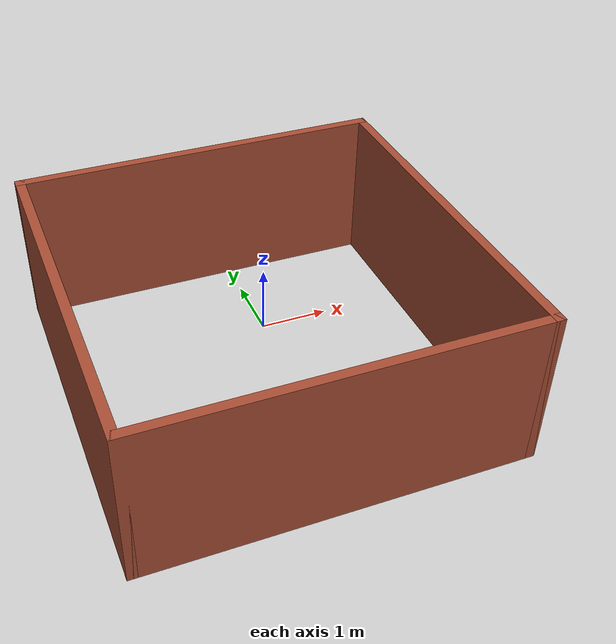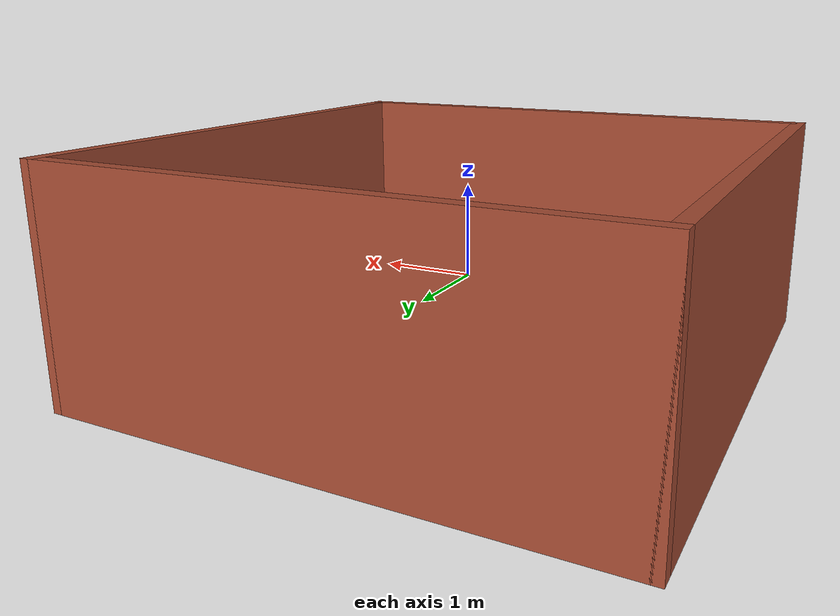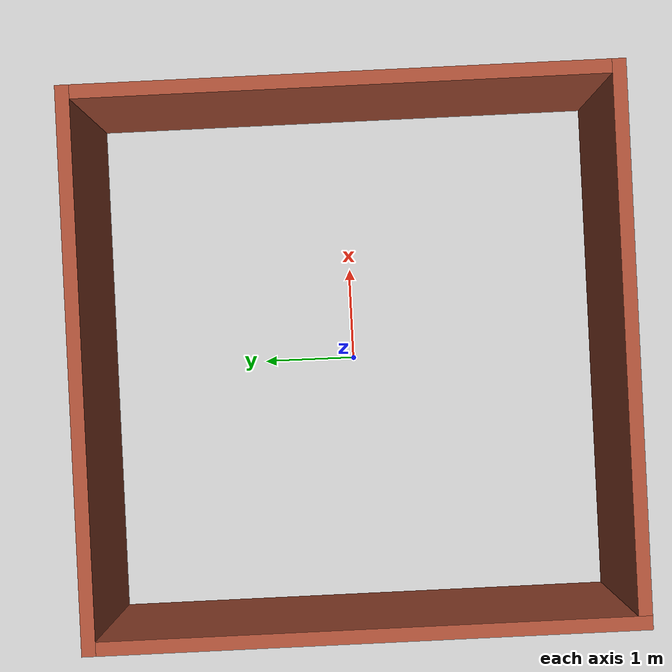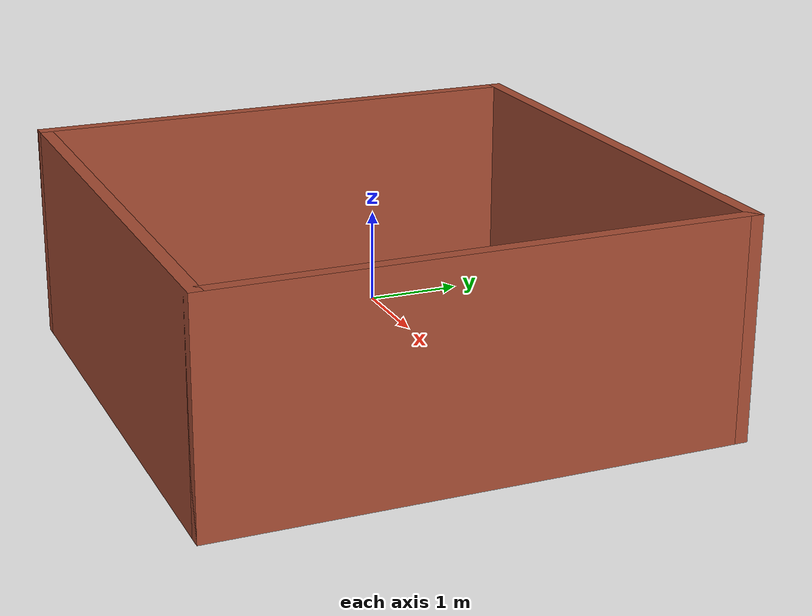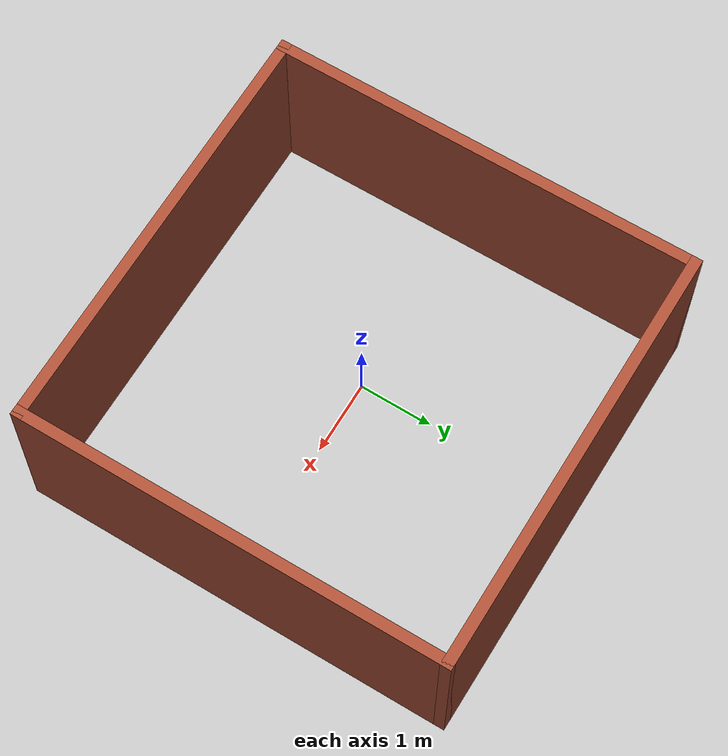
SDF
<?xml version='1.0'?>
<sdf version='1.6'>
  <model name='turtlebot3_square'>
    <pose frame=''>0 0 0 0 -0 0</pose>
    <link name='Wall_0'>
      <collision name='Wall_0_Collision'>
        <geometry>
          <box>
            <size>6 0.15 2.5</size>
          </box>
        </geometry>
        <pose frame=''>0 0 0.25 0 -0 0</pose>
      </collision>
      <visual name='Wall_0_Visual'>
        <pose frame=''>0 0 0.25 0 -0 0</pose>
        <geometry>
          <box>
            <size>6 0.15 2.5</size>
          </box>
        </geometry>
        <material>
          <script>
            <uri>file://media/materials/scripts/gazebo.material</uri>
            <name>Gazebo/Bricks</name>
          </script>
          <ambient>1 1 1 1</ambient>
        </material>
      </visual>
      <pose frame=''>0 2.925 0 0 -0 0</pose>
    </link>
    <link name='Wall_2'>
      <collision name='Wall_2_Collision'>
        <geometry>
          <box>
            <size>6 0.15 2.5</size>
          </box>
        </geometry>
        <pose frame=''>0 0 0.25 0 -0 0</pose>
      </collision>
      <visual name='Wall_2_Visual'>
        <pose frame=''>0 0 0.25 0 -0 0</pose>
        <geometry>
          <box>
            <size>6 0.15 2.5</size>
          </box>
        </geometry>
        <material>
          <script>
            <uri>file://media/materials/scripts/gazebo.material</uri>
            <name>Gazebo/Bricks</name>
          </script>
          <ambient>1 1 1 1</ambient>
        </material>
      </visual>
      <pose frame=''>-2.925 0 0 0 0 -1.5708</pose>
    </link>
    <link name='Wall_3'>
      <collision name='Wall_3_Collision'>
        <geometry>
          <box>
            <size>6 0.15 2.5</size>
          </box>
        </geometry>
        <pose frame=''>0 0 0.25 0 -0 0</pose>
      </collision>
      <visual name='Wall_3_Visual'>
        <pose frame=''>0 0 0.25 0 -0 0</pose>
        <geometry>
          <box>
            <size>6 0.15 2.5</size>
          </box>
        </geometry>
        <material>
          <script>
            <uri>file://media/materials/scripts/gazebo.material</uri>
            <name>Gazebo/Bricks</name>
          </script>
          <ambient>1 1 1 1</ambient>
        </material>
      </visual>
      <pose frame=''>0 -2.925 0 0 -0 0</pose>
    </link>
    <link name='Wall_4'>
      <collision name='Wall_4_Collision'>
        <geometry>
          <box>
            <size>6 0.15 2.5</size>
          </box>
        </geometry>
        <pose frame=''>0 0 0.25 0 -0 0</pose>
      </collision>
      <visual name='Wall_4_Visual'>
        <pose frame=''>0 0 0.25 0 -0 0</pose>
        <geometry>
          <box>
            <size>6 0.15 2.5</size>
          </box>
        </geometry>
        <material>
          <script>
            <uri>file://media/materials/scripts/gazebo.material</uri>
            <name>Gazebo/Bricks</name>
          </script>
          <ambient>1 1 1 1</ambient>
        </material>
      </visual>
      <pose frame=''>2.925 0 0 0 -0 1.5708</pose>
    </link>
    <static>1</static>
  </model>
</sdf>
